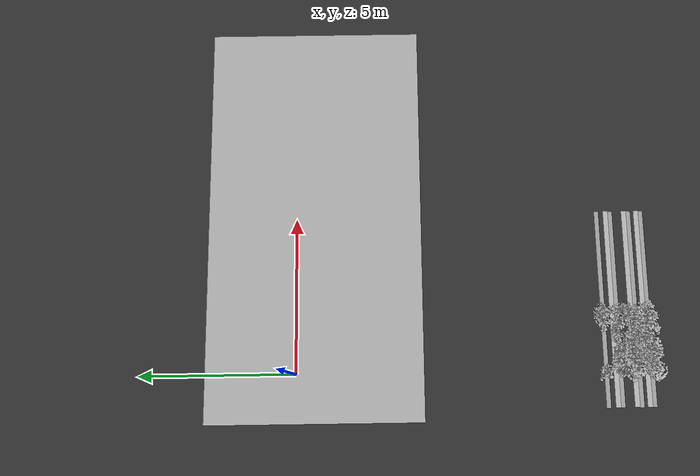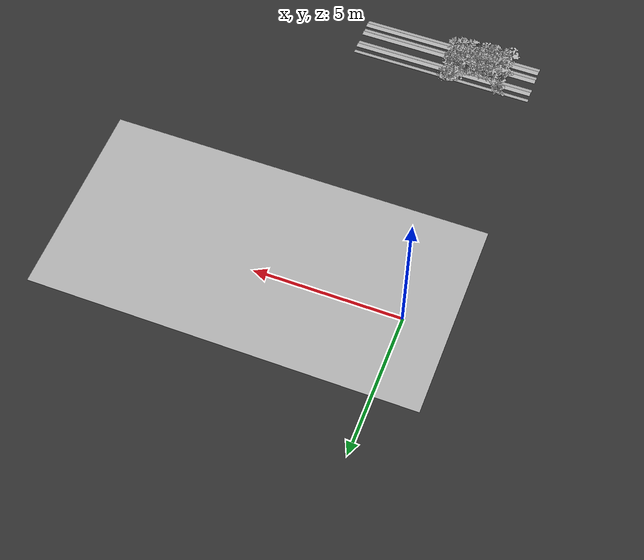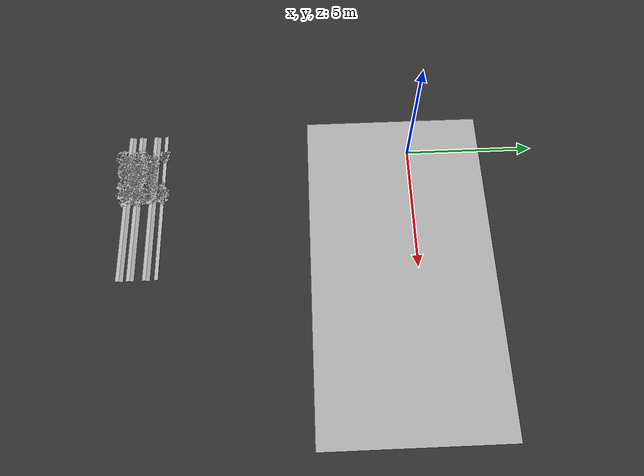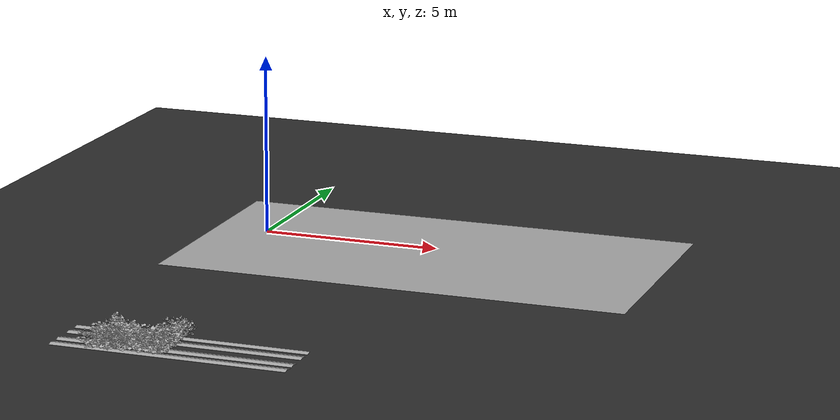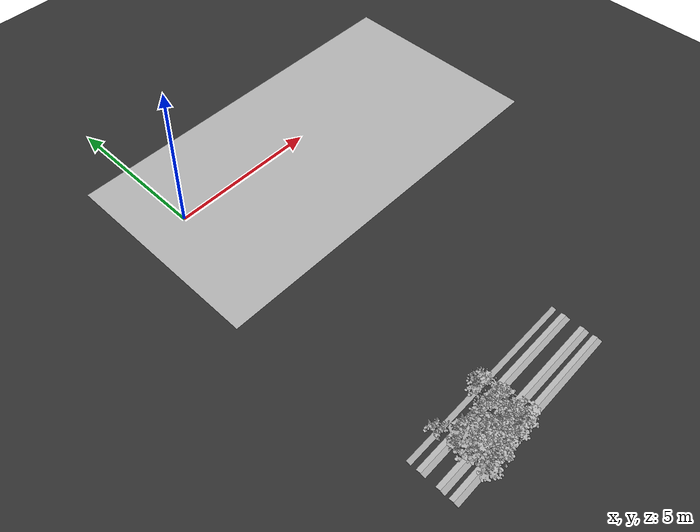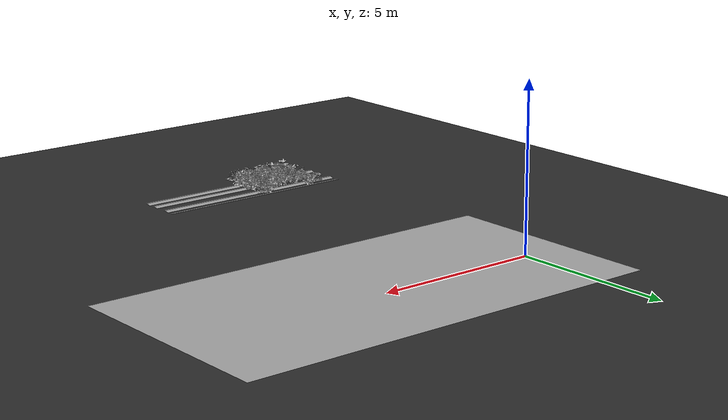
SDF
<sdf version="1.7">
 <world name="default">
  <model name="ground_plane">
   <static>1</static>
   <link name="link">
    <collision name="collision">
     <geometry><plane><normal>0 0 1</normal><size>100 100</size></plane></geometry>
     <surface>
      <contact><collide_bitmask>65535</collide_bitmask></contact>
      <friction><ode><mu>100</mu><mu2>50</mu2></ode></friction>
     </surface>
    </collision>
    <visual name="visual">
     <cast_shadows>0</cast_shadows>
     <geometry><plane><normal>0 0 1</normal><size>100 100</size></plane></geometry>
     <material>
      <ambient>0.2 0.2 0.2 1.0</ambient>
      <diffuse>0.2 0.2 0.2 1.0</diffuse>
      <specular>0.2 0.2 0.2 1.0</specular>
      <emissive>0.2 0.2 0.2 1.0</emissive>
     </material>
    </visual>
   </link>
  </model>
  <model name="ground">
   <pose>5 -0.5 0.01  3.141592654 0 0</pose>
   <static>true</static>
   <link name="body">
    <visual name="visual">
     <cast_shadows>0</cast_shadows>
     <geometry>
      <mesh><uri>file:///home/ifcosta/final_ws/src/cnn_line/worlds/models/ground.obj</uri></mesh>
     </geometry>
    </visual>
   </link>
  </model>
  <model name="plt_30000">
   <pose>-0.0155 -10.3 0.0139 0.0 0.0 -0.073187</pose>
   <static>true</static>
   <link name="body">
    <visual name="visual">
     <geometry>
      <mesh><uri>file:///home/ifcosta/final_ws/src/cnn_line/worlds/models/plant34.obj</uri></mesh>
     </geometry>
    </visual>
   </link>
  </model>
  <model name="plt_30001">
   <pose>0.29 -10.2 0.0123 0.0 0.0 -0.051587</pose>
   <static>true</static>
   <link name="body">
    <visual name="visual">
     <geometry>
      <mesh><uri>file:///home/ifcosta/final_ws/src/cnn_line/worlds/models/plant36.obj</uri></mesh>
     </geometry>
    </visual>
   </link>
  </model>
  <model name="plt_30002">
   <pose>0.662 -10.3 0.0135 0.0 0.0 -0.3181</pose>
   <static>true</static>
   <link name="body">
    <visual name="visual">
     <geometry>
      <mesh><uri>file:///home/ifcosta/final_ws/src/cnn_line/worlds/models/plant33.obj</uri></mesh>
     </geometry>
    </visual>
   </link>
  </model>
  <model name="plt_30003">
   <pose>0.961 -10.3 0.0196 0.0 0.0 0.10055</pose>
   <static>true</static>
   <link name="body">
    <visual name="visual">
     <geometry>
      <mesh><uri>file:///home/ifcosta/final_ws/src/cnn_line/worlds/models/plant34.obj</uri></mesh>
     </geometry>
    </visual>
   </link>
  </model>
  <model name="plt_30004">
   <pose>1.19 -10.2 0.012 0.0 0.0 -0.74742</pose>
   <static>true</static>
   <link name="body">
    <visual name="visual">
     <geometry>
      <mesh><uri>file:///home/ifcosta/final_ws/src/cnn_line/worlds/models/plant31.obj</uri></mesh>
     </geometry>
    </visual>
   </link>
  </model>
  <model name="plt_30005">
   <pose>1.48 -10.3 0.0138 0.0 0.0 -0.058823</pose>
   <static>true</static>
   <link name="body">
    <visual name="visual">
     <geometry>
      <mesh><uri>file:///home/ifcosta/final_ws/src/cnn_line/worlds/models/plant36.obj</uri></mesh>
     </geometry>
    </visual>
   </link>
  </model>
  <model name="plt_30006">
   <pose>1.84 -10.3 0.0161 0.0 0.0 -0.92968</pose>
   <static>true</static>
   <link name="body">
    <visual name="visual">
     <geometry>
      <mesh><uri>file:///home/ifcosta/final_ws/src/cnn_line/worlds/models/plant36.obj</uri></mesh>
     </geometry>
    </visual>
   </link>
  </model>
  <model name="slope_1434">
   <pose>2.0 -10.2 -0.005 0.0 0.0 0.0</pose>
   <static>true</static>
   <link name="body">
    <visual name="visual">
     <geometry>
      <mesh><uri>file:///home/ifcosta/final_ws/src/cnn_line/worlds/models/slope.obj</uri></mesh>
     </geometry>
    </visual>
   </link>
  </model>
  <model name="slope_1534">
   <pose>2.0 -10.2 -0.005 0.0 0.0 3.1416</pose>
   <static>true</static>
   <link name="body">
    <visual name="visual">
     <geometry>
      <mesh><uri>file:///home/ifcosta/final_ws/src/cnn_line/worlds/models/slope.obj</uri></mesh>
     </geometry>
    </visual>
   </link>
  </model>
  <model name="plt_30034">
   <pose>-0.0142 -9.82 0.0136 0.0 0.0 -0.21044</pose>
   <static>true</static>
   <link name="body">
    <visual name="visual">
     <geometry>
      <mesh><uri>file:///home/ifcosta/final_ws/src/cnn_line/worlds/models/plant33.obj</uri></mesh>
     </geometry>
    </visual>
   </link>
  </model>
  <model name="plt_30039">
   <pose>1.59 -9.76 0.0153 0.0 0.0 0.15789</pose>
   <static>true</static>
   <link name="body">
    <visual name="visual">
     <geometry>
      <mesh><uri>file:///home/ifcosta/final_ws/src/cnn_line/worlds/models/plant30.obj</uri></mesh>
     </geometry>
    </visual>
   </link>
  </model>
  <model name="plt_30040">
   <pose>1.82 -9.75 0.0142 0.0 0.0 1.0688</pose>
   <static>true</static>
   <link name="body">
    <visual name="visual">
     <geometry>
      <mesh><uri>file:///home/ifcosta/final_ws/src/cnn_line/worlds/models/plant32.obj</uri></mesh>
     </geometry>
    </visual>
   </link>
  </model>
  <model name="slope_1468">
   <pose>2.0 -9.75 -0.005 0.0 0.0 0.0</pose>
   <static>true</static>
   <link name="body">
    <visual name="visual">
     <geometry>
      <mesh><uri>file:///home/ifcosta/final_ws/src/cnn_line/worlds/models/slope.obj</uri></mesh>
     </geometry>
    </visual>
   </link>
  </model>
  <model name="plt_40136">
   <pose>0.0107 -11.3 0.0145 0.0 0.0 -2.0218</pose>
   <static>true</static>
   <link name="body">
    <visual name="visual">
     <geometry>
      <mesh><uri>file:///home/ifcosta/final_ws/src/cnn_line/worlds/models/plant37.obj</uri></mesh>
     </geometry>
    </visual>
   </link>
  </model>
  <model name="plt_40137">
   <pose>0.332 -11.3 0.0125 0.0 0.0 0.15851</pose>
   <static>true</static>
   <link name="body">
    <visual name="visual">
     <geometry>
      <mesh><uri>file:///home/ifcosta/final_ws/src/cnn_line/worlds/models/plant37.obj</uri></mesh>
     </geometry>
    </visual>
   </link>
  </model>
  <model name="plt_40138">
   <pose>0.586 -11.2 0.0165 0.0 0.0 -2.2346</pose>
   <static>true</static>
   <link name="body">
    <visual name="visual">
     <geometry>
      <mesh><uri>file:///home/ifcosta/final_ws/src/cnn_line/worlds/models/plant37.obj</uri></mesh>
     </geometry>
    </visual>
   </link>
  </model>
  <model name="plt_40139">
   <pose>0.865 -11.2 0.0166 0.0 0.0 1.6262</pose>
   <static>true</static>
   <link name="body">
    <visual name="visual">
     <geometry>
      <mesh><uri>file:///home/ifcosta/final_ws/src/cnn_line/worlds/models/plant37.obj</uri></mesh>
     </geometry>
    </visual>
   </link>
  </model>
  <model name="plt_40140">
   <pose>1.18 -11.2 0.0134 0.0 0.0 -0.34237</pose>
   <static>true</static>
   <link name="body">
    <visual name="visual">
     <geometry>
      <mesh><uri>file:///home/ifcosta/final_ws/src/cnn_line/worlds/models/plant37.obj</uri></mesh>
     </geometry>
    </visual>
   </link>
  </model>
  <model name="plt_40141">
   <pose>1.53 -11.2 0.0144 0.0 0.0 0.023359</pose>
   <static>true</static>
   <link name="body">
    <visual name="visual">
     <geometry>
      <mesh><uri>file:///home/ifcosta/final_ws/src/cnn_line/worlds/models/plant37.obj</uri></mesh>
     </geometry>
    </visual>
   </link>
  </model>
  <model name="plt_40142">
   <pose>1.77 -11.2 0.0133 0.0 0.0 0.65375</pose>
   <static>true</static>
   <link name="body">
    <visual name="visual">
     <geometry>
      <mesh><uri>file:///home/ifcosta/final_ws/src/cnn_line/worlds/models/plant37.obj</uri></mesh>
     </geometry>
    </visual>
   </link>
  </model>
  <model name="slope_1970">
   <pose>2.0 -11.2 -0.005 0.0 0.0 0.0</pose>
   <static>true</static>
   <link name="body">
    <visual name="visual">
     <geometry>
      <mesh><uri>file:///home/ifcosta/final_ws/src/cnn_line/worlds/models/slope.obj</uri></mesh>
     </geometry>
    </visual>
   </link>
  </model>
  <model name="slope_2070">
   <pose>2.0 -11.2 -0.005 0.0 0.0 3.1416</pose>
   <static>true</static>
   <link name="body">
    <visual name="visual">
     <geometry>
      <mesh><uri>file:///home/ifcosta/final_ws/src/cnn_line/worlds/models/slope.obj</uri></mesh>
     </geometry>
    </visual>
   </link>
  </model>
  <model name="plt_40170">
   <pose>0.0793 -10.8 0.0149 0.0 0.0 0.27691</pose>
   <static>true</static>
   <link name="body">
    <visual name="visual">
     <geometry>
      <mesh><uri>file:///home/ifcosta/final_ws/src/cnn_line/worlds/models/plant37.obj</uri></mesh>
     </geometry>
    </visual>
   </link>
  </model>
  <model name="plt_40171">
   <pose>0.334 -10.7 0.00981 0.0 0.0 -0.49624</pose>
   <static>true</static>
   <link name="body">
    <visual name="visual">
     <geometry>
      <mesh><uri>file:///home/ifcosta/final_ws/src/cnn_line/worlds/models/plant37.obj</uri></mesh>
     </geometry>
    </visual>
   </link>
  </model>
  <model name="plt_40172">
   <pose>0.592 -10.7 0.0162 0.0 0.0 -0.83961</pose>
   <static>true</static>
   <link name="body">
    <visual name="visual">
     <geometry>
      <mesh><uri>file:///home/ifcosta/final_ws/src/cnn_line/worlds/models/plant37.obj</uri></mesh>
     </geometry>
    </visual>
   </link>
  </model>
  <model name="plt_40173">
   <pose>0.897 -10.7 0.0182 0.0 0.0 -0.65935</pose>
   <static>true</static>
   <link name="body">
    <visual name="visual">
     <geometry>
      <mesh><uri>file:///home/ifcosta/final_ws/src/cnn_line/worlds/models/plant37.obj</uri></mesh>
     </geometry>
    </visual>
   </link>
  </model>
  <model name="plt_40174">
   <pose>1.27 -10.8 0.0171 0.0 0.0 1.6747</pose>
   <static>true</static>
   <link name="body">
    <visual name="visual">
     <geometry>
      <mesh><uri>file:///home/ifcosta/final_ws/src/cnn_line/worlds/models/plant37.obj</uri></mesh>
     </geometry>
    </visual>
   </link>
  </model>
  <model name="plt_40175">
   <pose>1.55 -10.8 0.0107 0.0 0.0 -0.65399</pose>
   <static>true</static>
   <link name="body">
    <visual name="visual">
     <geometry>
      <mesh><uri>file:///home/ifcosta/final_ws/src/cnn_line/worlds/models/plant37.obj</uri></mesh>
     </geometry>
    </visual>
   </link>
  </model>
  <model name="plt_40176">
   <pose>1.81 -10.7 0.0169 0.0 0.0 1.8029</pose>
   <static>true</static>
   <link name="body">
    <visual name="visual">
     <geometry>
      <mesh><uri>file:///home/ifcosta/final_ws/src/cnn_line/worlds/models/plant37.obj</uri></mesh>
     </geometry>
    </visual>
   </link>
  </model>
  <model name="slope_2004">
   <pose>2.0 -10.8 -0.005 0.0 0.0 0.0</pose>
   <static>true</static>
   <link name="body">
    <visual name="visual">
     <geometry>
      <mesh><uri>file:///home/ifcosta/final_ws/src/cnn_line/worlds/models/slope.obj</uri></mesh>
     </geometry>
    </visual>
   </link>
  </model>
  <model name="slope_2104">
   <pose>2.0 -10.8 -0.005 0.0 0.0 3.1416</pose>
   <static>true</static>
   <link name="body">
    <visual name="visual">
     <geometry>
      <mesh><uri>file:///home/ifcosta/final_ws/src/cnn_line/worlds/models/slope.obj</uri></mesh>
     </geometry>
    </visual>
   </link>
  </model>
 </world>
</sdf>
